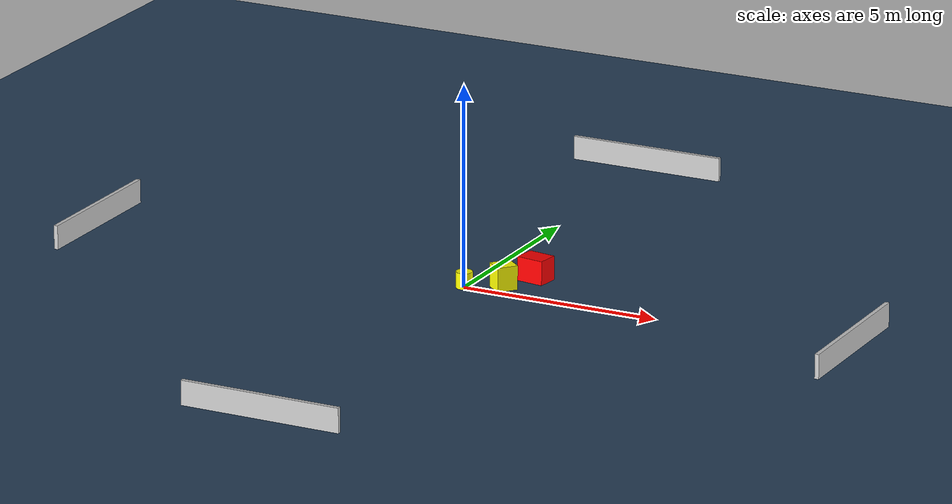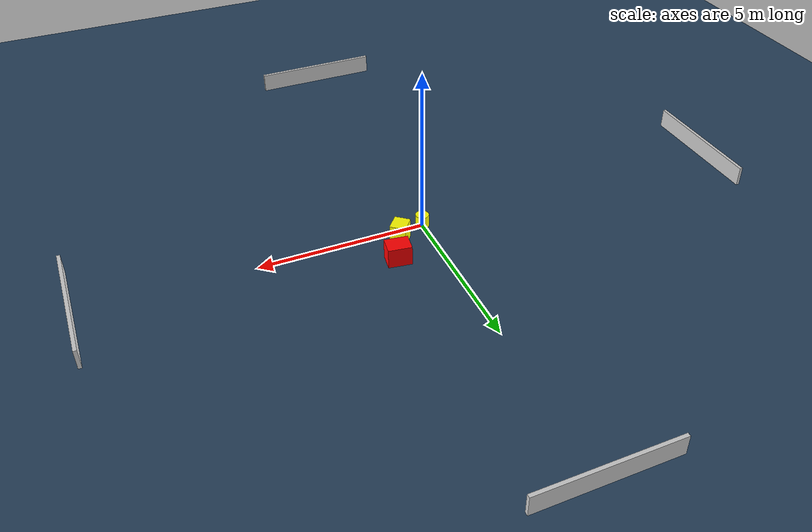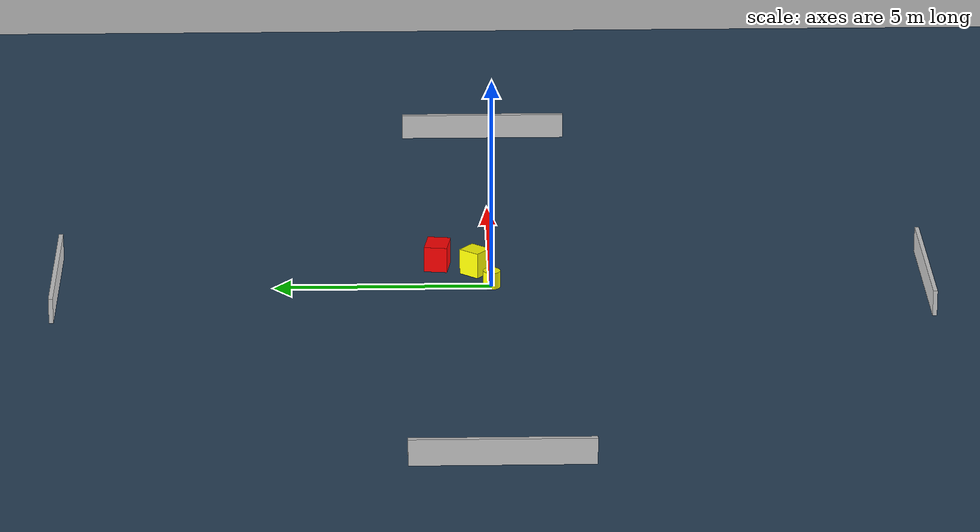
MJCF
<?xml version="1.0" ?>
<mujoco model="generated_environment">
  <option timestep="0.01" integrator="RK4" cone="elliptic"/>
  <default>
    <geom density="1"/>
  </default>
  <asset>
    <texture builtin="gradient" height="3072" name="skybox" rgb1="0.3 0.5 0.7" rgb2="0 0 0" type="skybox" width="512"/>
    <texture builtin="checker" height="300" name="groundplane" rgb1="0.2 0.3 0.4" rgb2="0.1 0.2 0.3" type="2d" width="300"/>
    <material name="groundplane" reflectance="0.2" texrepeat="5 5" texture="groundplane"/>
  </asset>
  <worldbody>
    <light dir="0 0 -1" directional="true" pos="0 0 1.5"/>
    <geom condim="3" friction="0.5 0.005 0.001" material="groundplane" name="floor" pos="0 0 0" size="0 0 0.05" type="plane"/>
    <body name="walls">
      <geom name="wall_1" condim="4" pos="-10.0 0.0 0.3" rgba="0.800000011920929 0.800000011920929 0.800000011920929 1.0" size="0.05 2.0 0.3" type="box"/>
      <geom name="wall_2" condim="4" pos="10.0 0.0 0.3" rgba="0.800000011920929 0.800000011920929 0.800000011920929 1.0" size="0.05 2.0 0.3" type="box"/>
      <geom name="wall_3" condim="4" pos="0.0 -10.0 0.3" rgba="0.800000011920929 0.800000011920929 0.800000011920929 1.0" size="2.0 0.05 0.3" type="box"/>
      <geom name="wall_4" condim="4" pos="0.0 10.0 0.3" rgba="0.800000011920929 0.800000011920929 0.800000011920929 1.0" size="2.0 0.05 0.3" type="box"/>
    </body>
    <body name="robot">
      <joint name="joint_x" type="slide" pos="0 0 0" axis="1 0 0"/>
      <joint name="joint_y" type="slide" pos="0 0 0" axis="0 1 0"/>
      <geom name="robot" type="cylinder" pos="0.0 0.0 0.2" size="0.2 0.2 0.0" mass="5.0" friction="1.0 0.005 0.0001" condim="4" rgba="1.0 1.0 0.0 1.0"/>
    </body>
    <body name="obstacle_1_movable">
      <geom name="obstacle_1_movable" condim="4" pos="0.8540631871465955 0.37228029758669573 0.3" euler="0 0 50.56576743395463" friction="0.0 0.005 0.001" rgba="1.0 1.0 0.0 1.0" size="0.25811969275417346 0.23594588517310572 0.3" type="box" mass="0.1"/>
      <joint type="free"/>
    </body>
    <body name="obstacle_2_static">
      <geom name="obstacle_2_static" condim="4" pos="1.2726497727813413 1.2333995451761963 0.3" euler="0 0 261.77300187100127" friction="0.0 0.005 0.001" rgba="1.0 0.0 0.0 1.0" size="0.26613097129578833 0.34596570962163553 0.3" type="box"/>
    </body>
  </worldbody>
  <actuator>
    <motor name="actuator_x" joint="joint_x" gear="1" ctrlrange="-1 1"/>
    <motor name="actuator_y" joint="joint_y" gear="1" ctrlrange="-1 1"/>
  </actuator>
</mujoco>
